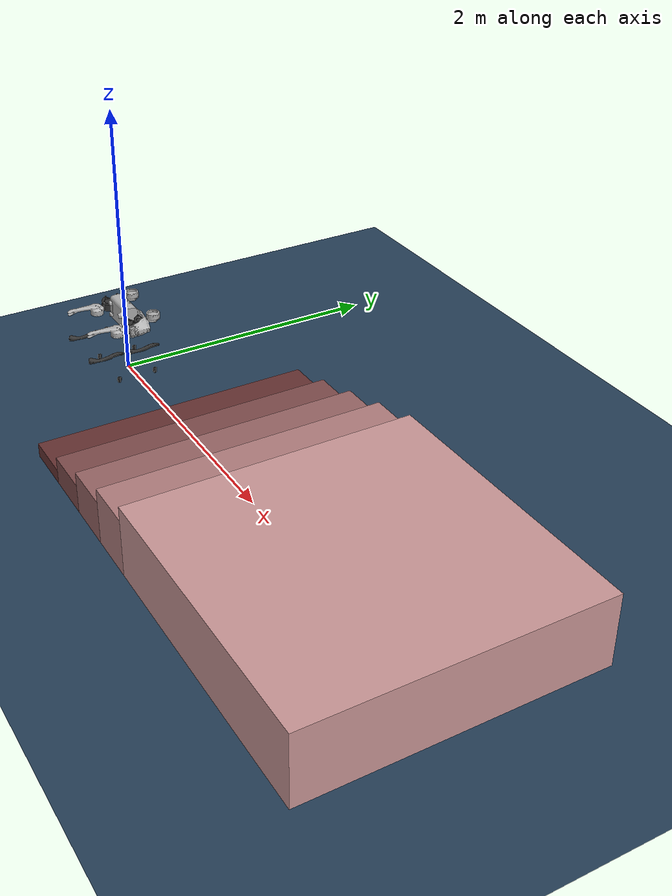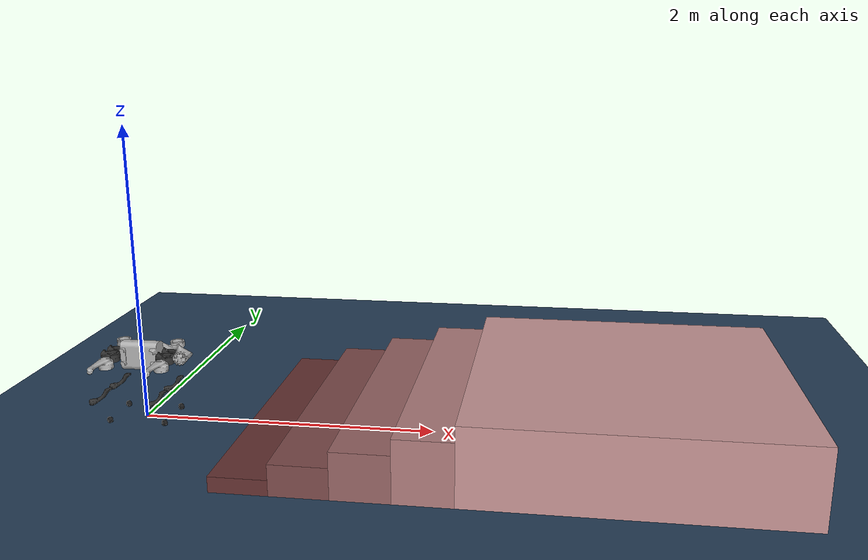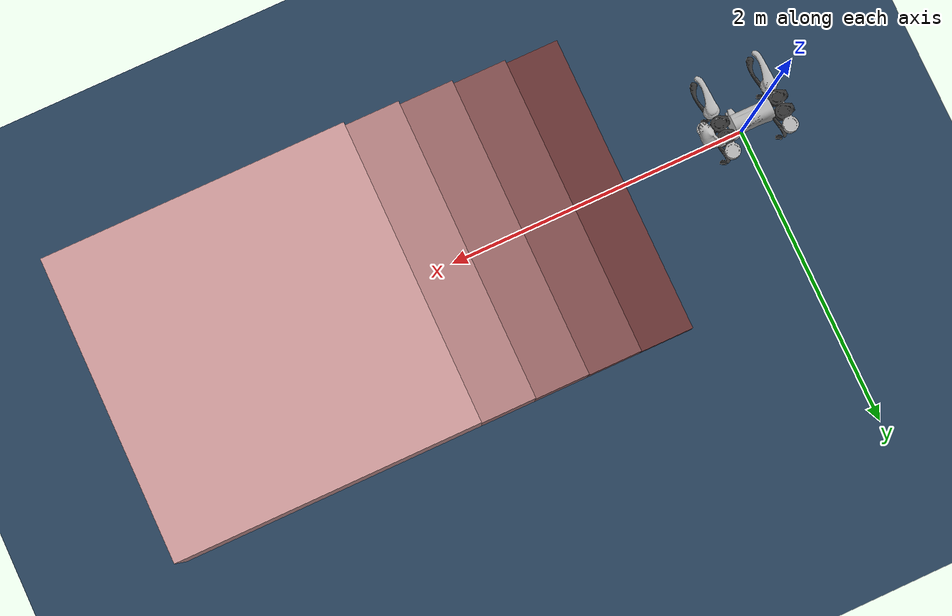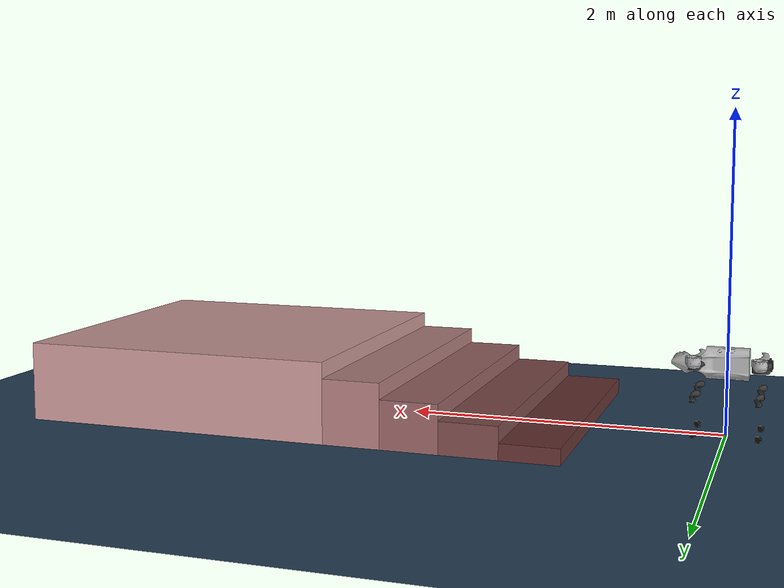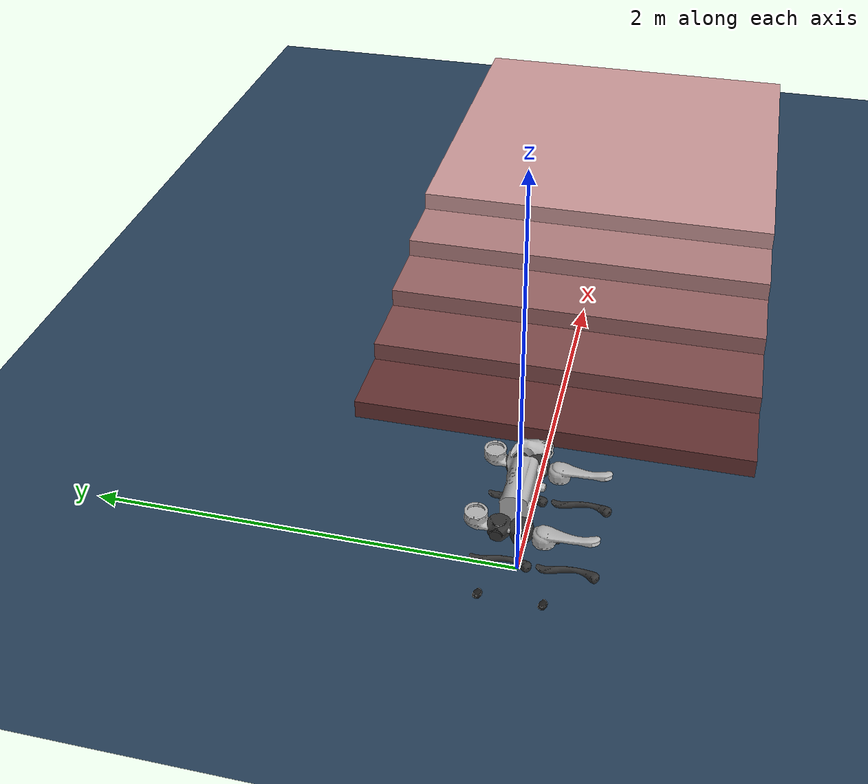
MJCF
<mujoco model="go2_with_stairs">
  <compiler angle="radian" meshdir="meshes/"/>

  <option cone="elliptic" impratio="100"/>

  <default>
    <joint damping="0.01" armature="0.01" frictionloss="0.1"/>
    <geom contype="1" conaffinity="1" condim="3" friction="1.0 0.005 0.0001"/>
    <motor ctrllimited="true"/>
  </default>

  <asset>
    <mesh name="base" file="base.stl"/>
    <mesh name="hip" file="hip.stl"/>
    <mesh name="thigh" file="thigh.stl"/>
    <mesh name="thigh_mirror" file="thigh_mirror.stl"/>
    <mesh name="calf" file="calf.stl"/>
    <mesh name="calf_mirror" file="calf_mirror.stl"/>
    <mesh name="foot" file="foot.stl"/>

    <texture type="skybox" builtin="gradient" rgb1="0.3 0.5 0.7" rgb2="0 0 0" width="512" height="3072"/>
    <texture type="2d" name="groundplane" builtin="checker" mark="edge" rgb1="0.2 0.3 0.4" rgb2="0.1 0.2 0.3" markrgb="0.8 0.8 0.8" width="300" height="300"/>
    <material name="groundplane" texture="groundplane" texuniform="true" texrepeat="5 5" reflectance="0.2"/>
  </asset>

  <worldbody>
    <light directional="true" diffuse=".8 .8 .8" specular=".2 .2 .2" pos="0 0 5" dir="0 0 -1"/>

    <geom name="floor" size="0 0 0.05" type="plane" material="groundplane"/>

    <geom name="st_up_0" type="box" size="0.18 1.0 0.05" pos="1.00 0.0 0.05" rgba="0.4 0.2 0.2 1"/>
    <geom name="st_up_1" type="box" size="0.18 1.0 0.10" pos="1.36 0.0 0.10" rgba="0.5 0.3 0.3 1"/>
    <geom name="st_up_2" type="box" size="0.18 1.0 0.15" pos="1.72 0.0 0.15" rgba="0.6 0.4 0.4 1"/>
    <geom name="st_up_3" type="box" size="0.18 1.0 0.20" pos="2.08 0.0 0.20" rgba="0.7 0.5 0.5 1"/>
    <geom name="st_up_4" type="box" size="1.00 1.0 0.25" pos="3.26 0.0 0.25" rgba="0.8 0.6 0.6 1"/>

    <body name="base" pos="0 0 0.45">
      <joint name="floating_base" type="free"/>
      <inertial pos="0 0 0" mass="5.0" diaginertia="0.01 0.01 0.01"/>
      <geom type="mesh" mesh="base" rgba="0.7 0.7 0.7 1"/>

      <body name="FL_hip" pos="0.1934 0.0465 0">
        <joint name="FL_hip_joint" axis="1 0 0" range="-1.0472 1.0472"/>
        <geom type="mesh" mesh="hip" rgba="0.2 0.2 0.2 1"/>
        <body name="FL_thigh" pos="0 0.0955 0">
          <joint name="FL_thigh_joint" axis="0 1 0" range="-1.5708 3.4907"/>
          <geom type="mesh" mesh="thigh" rgba="0.7 0.7 0.7 1"/>
          <body name="FL_calf" pos="0 0 -0.213">
            <joint name="FL_calf_joint" axis="0 1 0" range="-2.7227 -0.83776"/>
            <geom type="mesh" mesh="calf" rgba="0.2 0.2 0.2 1"/>
            <body name="FL_foot" pos="0 0 -0.213">
                <geom type="mesh" mesh="foot" rgba="0.1 0.1 0.1 1"/>
            </body>
          </body>
        </body>
      </body>

      <body name="FR_hip" pos="0.1934 -0.0465 0">
        <joint name="FR_hip_joint" axis="1 0 0" range="-1.0472 1.0472"/>
        <geom type="mesh" mesh="hip" rgba="0.2 0.2 0.2 1"/>
        <body name="FR_thigh" pos="0 -0.0955 0">
          <joint name="FR_thigh_joint" axis="0 1 0" range="-1.5708 3.4907"/>
          <geom type="mesh" mesh="thigh_mirror" rgba="0.7 0.7 0.7 1"/>
          <body name="FR_calf" pos="0 0 -0.213">
            <joint name="FR_calf_joint" axis="0 1 0" range="-2.7227 -0.83776"/>
            <geom type="mesh" mesh="calf_mirror" rgba="0.2 0.2 0.2 1"/>
            <body name="FR_foot" pos="0 0 -0.213">
                <geom type="mesh" mesh="foot" rgba="0.1 0.1 0.1 1"/>
            </body>
          </body>
        </body>
      </body>

      <body name="RL_hip" pos="-0.1934 0.0465 0">
        <joint name="RL_hip_joint" axis="1 0 0" range="-1.0472 1.0472"/>
        <geom type="mesh" mesh="hip" rgba="0.2 0.2 0.2 1"/>
        <body name="RL_thigh" pos="0 0.0955 0">
          <joint name="RL_thigh_joint" axis="0 1 0" range="-0.5236 4.5379"/>
          <geom type="mesh" mesh="thigh" rgba="0.7 0.7 0.7 1"/>
          <body name="RL_calf" pos="0 0 -0.213">
            <joint name="RL_calf_joint" axis="0 1 0" range="-2.7227 -0.83776"/>
            <geom type="mesh" mesh="calf" rgba="0.2 0.2 0.2 1"/>
            <body name="RL_foot" pos="0 0 -0.213">
                <geom type="mesh" mesh="foot" rgba="0.1 0.1 0.1 1"/>
            </body>
          </body>
        </body>
      </body>

      <body name="RR_hip" pos="-0.1934 -0.0465 0">
        <joint name="RR_hip_joint" axis="1 0 0" range="-1.0472 1.0472"/>
        <geom type="mesh" mesh="hip" rgba="0.2 0.2 0.2 1"/>
        <body name="RR_thigh" pos="0 -0.0955 0">
          <joint name="RR_thigh_joint" axis="0 1 0" range="-0.5236 4.5379"/>
          <geom type="mesh" mesh="thigh_mirror" rgba="0.7 0.7 0.7 1"/>
          <body name="RR_calf" pos="0 0 -0.213">
            <joint name="RR_calf_joint" axis="0 1 0" range="-2.7227 -0.83776"/>
            <geom type="mesh" mesh="calf_mirror" rgba="0.2 0.2 0.2 1"/>
            <body name="RR_foot" pos="0 0 -0.213">
                <geom type="mesh" mesh="foot" rgba="0.1 0.1 0.1 1"/>
            </body>
          </body>
        </body>
      </body>
     </body>
  </worldbody>

  <actuator>
    <motor name="FL_hip_motor" joint="FL_hip_joint" ctrlrange="-23.7 23.7"/>
    <motor name="FL_thigh_motor" joint="FL_thigh_joint" ctrlrange="-23.7 23.7"/>
    <motor name="FL_calf_motor" joint="FL_calf_joint" ctrlrange="-45.43 45.43"/>
    <motor name="FR_hip_motor" joint="FR_hip_joint" ctrlrange="-23.7 23.7"/>
    <motor name="FR_thigh_motor" joint="FR_thigh_joint" ctrlrange="-23.7 23.7"/>
    <motor name="FR_calf_motor" joint="FR_calf_joint" ctrlrange="-45.43 45.43"/>
    <motor name="RL_hip_motor" joint="RL_hip_joint" ctrlrange="-23.7 23.7"/>
    <motor name="RL_thigh_motor" joint="RL_thigh_joint" ctrlrange="-23.7 23.7"/>
    <motor name="RL_calf_motor" joint="RL_calf_joint" ctrlrange="-45.43 45.43"/>
    <motor name="RR_hip_motor" joint="RR_hip_joint" ctrlrange="-23.7 23.7"/>
    <motor name="RR_thigh_motor" joint="RR_thigh_joint" ctrlrange="-23.7 23.7"/>
    <motor name="RR_calf_motor" joint="RR_calf_joint" ctrlrange="-45.43 45.43"/>
  </actuator>
</mujoco>
